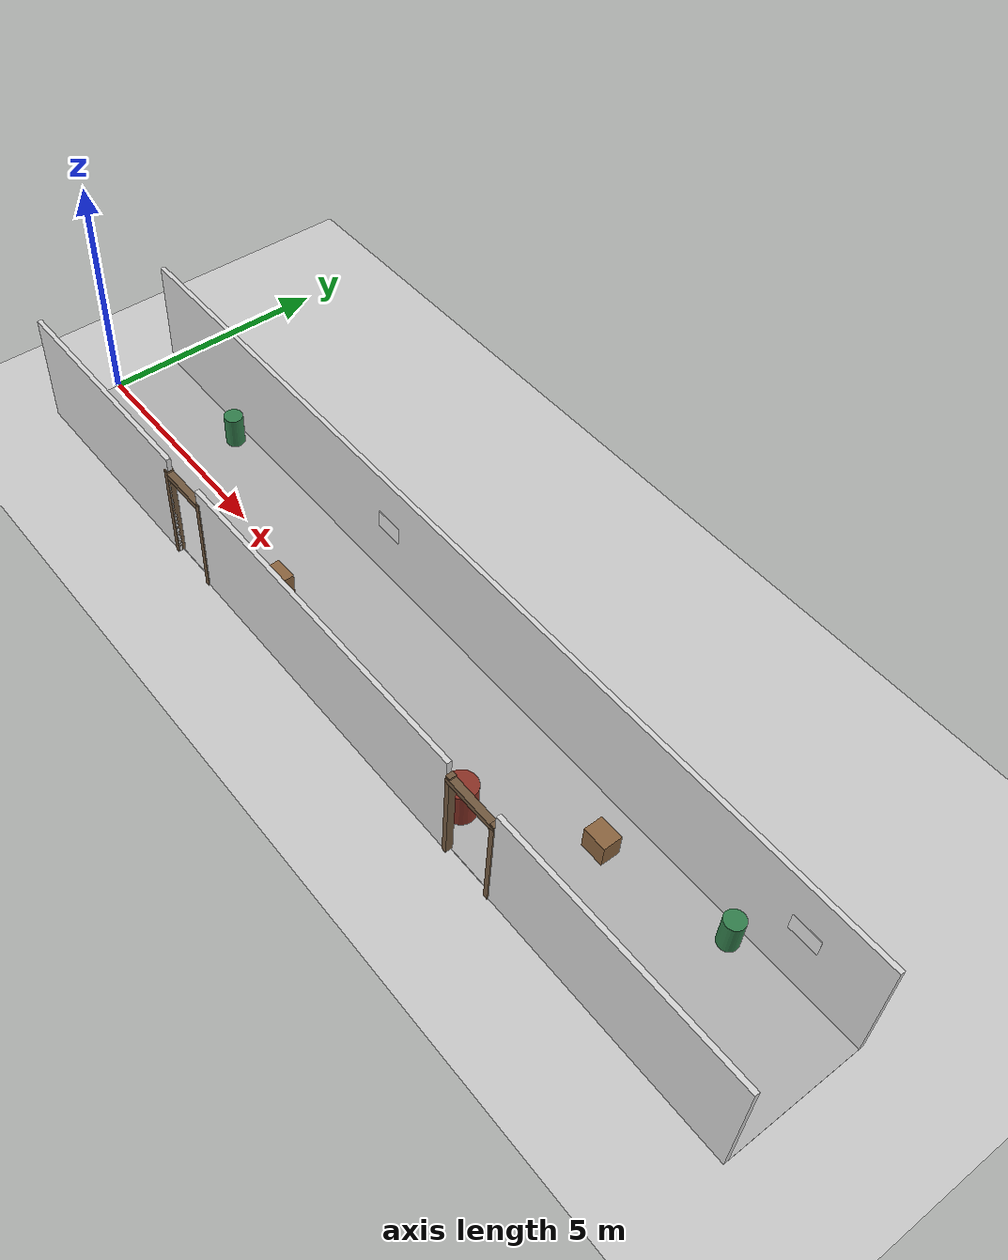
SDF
<?xml version="1.0" ?>
<sdf version="1.6">
  <world name="S1_static_corridor">
    <include><uri>model://sun</uri></include>
    <include><uri>model://ground_plane</uri></include>

    <!-- ===== Floor ===== -->
    <model name="floor">
      <static>true</static>
      <pose>10 0 -0.025 0 0 0</pose>
      <link name="link">
        <collision name="collision">
          <geometry><box><size>20.0 2.8 0.05</size></box></geometry>
        </collision>
        <visual name="visual">
          <geometry><box><size>20.0 2.8 0.05</size></box></geometry>
          <material>
            <ambient>0.7 0.7 0.7 1</ambient>
            <diffuse>0.7 0.7 0.7 1</diffuse>
          </material>
        </visual>
      </link>
    </model>

    <!-- ===== Left Wall - 3 segments with 2 doorway gaps ===== -->

    <model name="left_wall_front">
      <static>true</static>
      <pose>2.5 -1.45 1.25 0 0 0</pose>
      <link name="link">
        <collision name="collision">
          <geometry><box><size>5.0 0.1 2.5</size></box></geometry>
        </collision>
        <visual name="visual">
          <geometry><box><size>5.0 0.1 2.5</size></box></geometry>
          <material>
            <ambient>0.85 0.85 0.85 1</ambient>
            <diffuse>0.85 0.85 0.85 1</diffuse>
          </material>
        </visual>
      </link>
    </model>

    <model name="left_wall_mid">
      <static>true</static>
      <pose>9.7 -1.45 1.25 0 0 0</pose>
      <link name="link">
        <collision name="collision">
          <geometry><box><size>7.4 0.1 2.5</size></box></geometry>
        </collision>
        <visual name="visual">
          <geometry><box><size>7.4 0.1 2.5</size></box></geometry>
          <material>
            <ambient>0.85 0.85 0.85 1</ambient>
            <diffuse>0.85 0.85 0.85 1</diffuse>
          </material>
        </visual>
      </link>
    </model>

    <model name="left_wall_back">
      <static>true</static>
      <pose>17.3 -1.45 1.25 0 0 0</pose>
      <link name="link">
        <collision name="collision">
          <geometry><box><size>5.4 0.1 2.5</size></box></geometry>
        </collision>
        <visual name="visual">
          <geometry><box><size>5.4 0.1 2.5</size></box></geometry>
          <material>
            <ambient>0.85 0.85 0.85 1</ambient>
            <diffuse>0.85 0.85 0.85 1</diffuse>
          </material>
        </visual>
      </link>
    </model>

    <!-- ===== Right Wall - continuous full length ===== -->

    <model name="right_wall">
      <static>true</static>
      <pose>10 1.45 1.25 0 0 0</pose>
      <link name="link">
        <collision name="collision">
          <geometry><box><size>20.0 0.1 2.5</size></box></geometry>
        </collision>
        <visual name="visual">
          <geometry><box><size>20.0 0.1 2.5</size></box></geometry>
          <material>
            <ambient>0.85 0.85 0.85 1</ambient>
            <diffuse>0.85 0.85 0.85 1</diffuse>
          </material>
        </visual>
      </link>
    </model>

    <!-- ===== Doorway 1 (gap_center x=5.5) ===== -->

    <model name="door1_left_post">
      <static>true</static>
      <pose>4.95 -1.45 1.1 0 0 0</pose>
      <link name="link">
        <collision name="collision">
          <geometry><box><size>0.10 0.15 2.2</size></box></geometry>
        </collision>
        <visual name="visual">
          <geometry><box><size>0.10 0.15 2.2</size></box></geometry>
          <material>
            <ambient>0.35 0.25 0.2 1</ambient>
            <diffuse>0.45 0.35 0.25 1</diffuse>
          </material>
        </visual>
      </link>
    </model>

    <model name="door1_right_post">
      <static>true</static>
      <pose>6.05 -1.45 1.1 0 0 0</pose>
      <link name="link">
        <collision name="collision">
          <geometry><box><size>0.10 0.15 2.2</size></box></geometry>
        </collision>
        <visual name="visual">
          <geometry><box><size>0.10 0.15 2.2</size></box></geometry>
          <material>
            <ambient>0.35 0.25 0.2 1</ambient>
            <diffuse>0.45 0.35 0.25 1</diffuse>
          </material>
        </visual>
      </link>
    </model>

    <model name="door1_top">
      <static>true</static>
      <pose>5.5 -1.45 2.1 0 0 0</pose>
      <link name="link">
        <collision name="collision">
          <geometry><box><size>1.2 0.15 0.12</size></box></geometry>
        </collision>
        <visual name="visual">
          <geometry><box><size>1.2 0.15 0.12</size></box></geometry>
          <material>
            <ambient>0.35 0.25 0.2 1</ambient>
            <diffuse>0.45 0.35 0.25 1</diffuse>
          </material>
        </visual>
      </link>
    </model>

    <!-- ===== Doorway 2 (gap_center x=14.0) ===== -->

    <model name="door2_left_post">
      <static>true</static>
      <pose>13.45 -1.45 1.1 0 0 0</pose>
      <link name="link">
        <collision name="collision">
          <geometry><box><size>0.10 0.15 2.2</size></box></geometry>
        </collision>
        <visual name="visual">
          <geometry><box><size>0.10 0.15 2.2</size></box></geometry>
          <material>
            <ambient>0.35 0.25 0.2 1</ambient>
            <diffuse>0.45 0.35 0.25 1</diffuse>
          </material>
        </visual>
      </link>
    </model>

    <model name="door2_right_post">
      <static>true</static>
      <pose>14.55 -1.45 1.1 0 0 0</pose>
      <link name="link">
        <collision name="collision">
          <geometry><box><size>0.10 0.15 2.2</size></box></geometry>
        </collision>
        <visual name="visual">
          <geometry><box><size>0.10 0.15 2.2</size></box></geometry>
          <material>
            <ambient>0.35 0.25 0.2 1</ambient>
            <diffuse>0.45 0.35 0.25 1</diffuse>
          </material>
        </visual>
      </link>
    </model>

    <model name="door2_top">
      <static>true</static>
      <pose>14.0 -1.45 2.1 0 0 0</pose>
      <link name="link">
        <collision name="collision">
          <geometry><box><size>1.2 0.15 0.12</size></box></geometry>
        </collision>
        <visual name="visual">
          <geometry><box><size>1.2 0.15 0.12</size></box></geometry>
          <material>
            <ambient>0.35 0.25 0.2 1</ambient>
            <diffuse>0.45 0.35 0.25 1</diffuse>
          </material>
        </visual>
      </link>
    </model>

    <!-- ===== Static Obstacles ===== -->

    <!-- Trash Bin 01: dark green cylinder -->
    <model name="trash_bin_01">
      <static>true</static>
      <pose>3.0 1.1 0.35 0 0 0</pose>
      <link name="link">
        <collision name="collision">
          <geometry><cylinder><radius>0.2</radius><length>0.7</length></cylinder></geometry>
        </collision>
        <visual name="visual">
          <geometry><cylinder><radius>0.2</radius><length>0.7</length></cylinder></geometry>
          <material>
            <ambient>0.2 0.3 0.2 1</ambient>
            <diffuse>0.2 0.5 0.3 1</diffuse>
          </material>
        </visual>
      </link>
    </model>

    <!-- Trash Bin 02: dark blue cylinder -->
    <model name="trash_bin_02">
      <static>true</static>
      <pose>10.0 -1.0 0.35 0 0 0</pose>
      <link name="link">
        <collision name="collision">
          <geometry><cylinder><radius>0.2</radius><length>0.7</length></cylinder></geometry>
        </collision>
        <visual name="visual">
          <geometry><cylinder><radius>0.2</radius><length>0.7</length></cylinder></geometry>
          <material>
            <ambient>0.15 0.2 0.35 1</ambient>
            <diffuse>0.2 0.3 0.55 1</diffuse>
          </material>
        </visual>
      </link>
    </model>

    <!-- Trash Bin 03: dark green cylinder -->
    <model name="trash_bin_03">
      <static>true</static>
      <pose>17.5 1.1 0.35 0 0 0</pose>
      <link name="link">
        <collision name="collision">
          <geometry><cylinder><radius>0.2</radius><length>0.7</length></cylinder></geometry>
        </collision>
        <visual name="visual">
          <geometry><cylinder><radius>0.2</radius><length>0.7</length></cylinder></geometry>
          <material>
            <ambient>0.2 0.3 0.2 1</ambient>
            <diffuse>0.2 0.5 0.3 1</diffuse>
          </material>
        </visual>
      </link>
    </model>

    <!-- Wall Sign 01: white box -->
    <model name="wall_sign_01">
      <static>true</static>
      <pose>1.5 -1.36 1.4 0 0 0</pose>
      <link name="link">
        <collision name="collision">
          <geometry><box><size>0.6 0.03 0.4</size></box></geometry>
        </collision>
        <visual name="visual">
          <geometry><box><size>0.6 0.03 0.4</size></box></geometry>
          <material>
            <ambient>0.8 0.8 0.8 1</ambient>
            <diffuse>0.9 0.9 0.9 1</diffuse>
          </material>
        </visual>
      </link>
    </model>

    <!-- Wall Sign 02: white box -->
    <model name="wall_sign_02">
      <static>true</static>
      <pose>8.0 1.41 1.4 0 0 0</pose>
      <link name="link">
        <collision name="collision">
          <geometry><box><size>0.6 0.03 0.4</size></box></geometry>
        </collision>
        <visual name="visual">
          <geometry><box><size>0.6 0.03 0.4</size></box></geometry>
          <material>
            <ambient>0.8 0.8 0.8 1</ambient>
            <diffuse>0.9 0.9 0.9 1</diffuse>
          </material>
        </visual>
      </link>
    </model>

    <!-- Wall Sign 03: white box -->
    <model name="wall_sign_03">
      <static>true</static>
      <pose>12.0 -1.36 1.4 0 0 0</pose>
      <link name="link">
        <collision name="collision">
          <geometry><box><size>0.6 0.03 0.4</size></box></geometry>
        </collision>
        <visual name="visual">
          <geometry><box><size>0.6 0.03 0.4</size></box></geometry>
          <material>
            <ambient>0.8 0.8 0.8 1</ambient>
            <diffuse>0.9 0.9 0.9 1</diffuse>
          </material>
        </visual>
      </link>
    </model>

    <!-- Wall Sign 04: white box -->
    <model name="wall_sign_04">
      <static>true</static>
      <pose>18.5 1.41 1.4 0 0 0</pose>
      <link name="link">
        <collision name="collision">
          <geometry><box><size>0.6 0.03 0.4</size></box></geometry>
        </collision>
        <visual name="visual">
          <geometry><box><size>0.6 0.03 0.4</size></box></geometry>
          <material>
            <ambient>0.8 0.8 0.8 1</ambient>
            <diffuse>0.9 0.9 0.9 1</diffuse>
          </material>
        </visual>
      </link>
    </model>

    <!-- Crate 01: brown box -->
    <model name="crate_01">
      <static>true</static>
      <pose>7.0 -0.5 0.25 0 0 0</pose>
      <link name="link">
        <collision name="collision">
          <geometry><box><size>0.5 0.4 0.5</size></box></geometry>
        </collision>
        <visual name="visual">
          <geometry><box><size>0.5 0.4 0.5</size></box></geometry>
          <material>
            <ambient>0.4 0.3 0.2 1</ambient>
            <diffuse>0.55 0.4 0.25 1</diffuse>
          </material>
        </visual>
      </link>
    </model>

    <!-- Crate 02: brown box -->
    <model name="crate_02">
      <static>true</static>
      <pose>15.0 0.6 0.25 0 0 0</pose>
      <link name="link">
        <collision name="collision">
          <geometry><box><size>0.5 0.4 0.5</size></box></geometry>
        </collision>
        <visual name="visual">
          <geometry><box><size>0.5 0.4 0.5</size></box></geometry>
          <material>
            <ambient>0.4 0.3 0.2 1</ambient>
            <diffuse>0.55 0.4 0.25 1</diffuse>
          </material>
        </visual>
      </link>
    </model>

    <!-- Barrel 01: dark red cylinder -->
    <model name="barrel_01">
      <static>true</static>
      <pose>13.0 -0.8 0.4 0 0 0</pose>
      <link name="link">
        <collision name="collision">
          <geometry><cylinder><radius>0.3</radius><length>0.8</length></cylinder></geometry>
        </collision>
        <visual name="visual">
          <geometry><cylinder><radius>0.3</radius><length>0.8</length></cylinder></geometry>
          <material>
            <ambient>0.4 0.15 0.1 1</ambient>
            <diffuse>0.55 0.2 0.15 1</diffuse>
          </material>
        </visual>
      </link>
    </model>

  </world>
</sdf>
